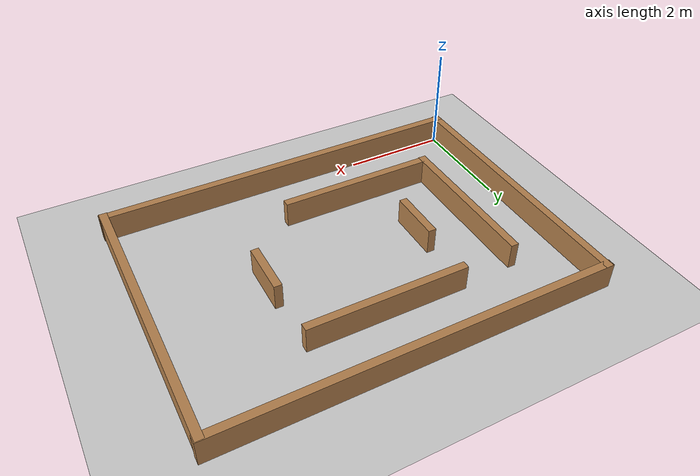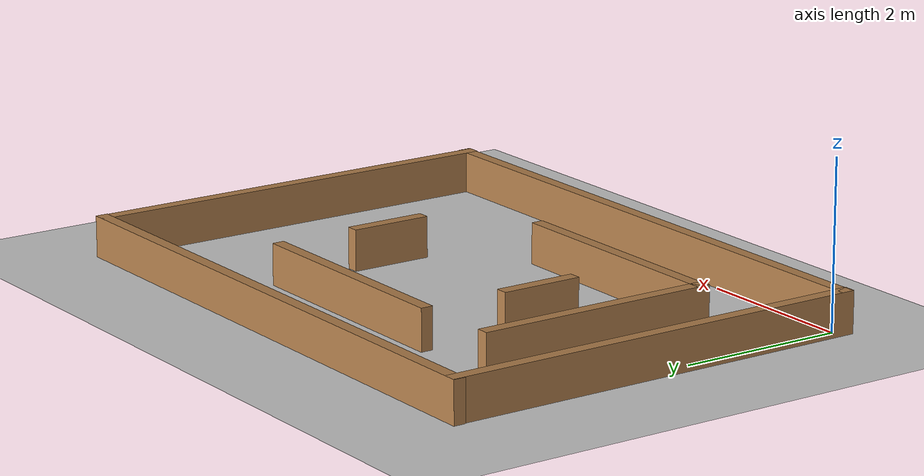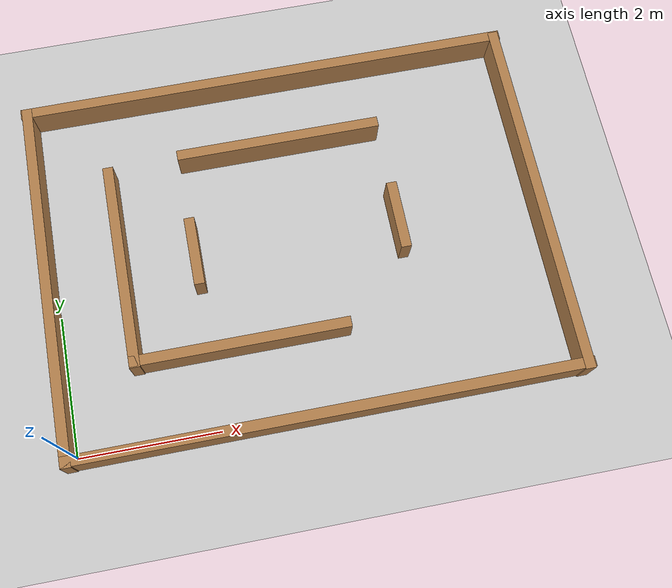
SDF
<sdf version="1.6">
 <world name="default">
  <light name="sun" type="directional">
   <pose>0 0 10 0 -0 0</pose>
   <diffuse>0.8 0.8 0.8 1</diffuse>
   <specular>0.2 0.2 0.2 1</specular>
   <attenuation>
    <range>1000</range>
    <constant>0.9</constant>
    <linear>0.01</linear>
    <quadratic>0.001</quadratic>
   </attenuation>
   <direction>-0.5 0.1 -0.9</direction>
  </light>
  <model name="ground_plane">
   <static>1</static>
   <link name="link">
    <collision name="collision">
     <geometry><plane><normal>0 0 1</normal><size>100 100</size></plane></geometry>
     <surface>
      <contact><collide_bitmask>65535</collide_bitmask></contact>
      <friction><ode><mu>100</mu><mu2>50</mu2></ode></friction>
     </surface>
    </collision>
    <visual name="visual">
     <cast_shadows>0</cast_shadows>
     <geometry><plane><normal>0 0 1</normal><size>100 100</size></plane></geometry>
     <material>
      <script><uri>file://media/materials/scripts/gazebo.material</uri><name>Gazebo/Grey</name></script>
     </material>
    </visual>
   </link>
  </model>
  <gravity>0 0 -9.8</gravity>
  <magnetic_field>6e-06 2.3e-05 -4.2e-05</magnetic_field>
  <atmosphere type="adiabatic"/>
  <physics name="default_physics" default="0" type="ode">
   <max_step_size>0.005</max_step_size>
   <real_time_factor>1</real_time_factor>
   <real_time_update_rate>4500</real_time_update_rate>
  </physics>
  <scene><ambient>0.4 0.4 0.4 1</ambient><background>0.7 0.7 0.7 1</background><shadows>1</shadows></scene>
  <audio><device>default</device></audio>
  <spherical_coordinates>
   <surface_model>EARTH_WGS84</surface_model>
   <latitude_deg>0</latitude_deg>
   <longitude_deg>0</longitude_deg>
   <elevation>0</elevation>
   <heading_deg>0</heading_deg>
  </spherical_coordinates>
  <model name="world3">
   <pose>3.49098 2.49495 0 0 -0 0</pose>
   <link name="Wall_0">
    <collision name="Wall_0_Collision">
     <geometry><box><size>5.32763 0.15 0.5</size></box></geometry>
     <pose>0 0 0.25 0 -0 0</pose>
    </collision>
    <visual name="Wall_0_Visual">
     <pose>0 0 0.25 0 -0 0</pose>
     <geometry><box><size>5.32763 0.15 0.5</size></box></geometry>
     <material>
      <script><uri>file://media/materials/scripts/gazebo.material</uri><name>Gazebo/Wood</name></script>
      <ambient>1 1 1 1</ambient>
     </material>
     <meta><layer>0</layer></meta>
    </visual>
    <pose>-3.57048 0.000862 0 0 -0 -1.5708</pose>
   </link>
   <link name="Wall_11">
    <collision name="Wall_11_Collision">
     <geometry><box><size>3.09258 0.15 0.5</size></box></geometry>
     <pose>0 0 0.25 0 -0 0</pose>
    </collision>
    <visual name="Wall_11_Visual">
     <pose>0 0 0.25 0 -0 0</pose>
     <geometry><box><size>3.09258 0.15 0.5</size></box></geometry>
     <material>
      <script><uri>file://media/materials/scripts/gazebo.material</uri><name>Gazebo/Wood</name></script>
      <ambient>1 1 1 1</ambient>
     </material>
     <meta><layer>0</layer></meta>
    </visual>
    <pose>-1.03078 -1.41516 0 0 -0 0</pose>
   </link>
   <link name="Wall_13">
    <collision name="Wall_13_Collision">
     <geometry><box><size>1 0.15 0.5</size></box></geometry>
     <pose>0 0 0.25 0 -0 0</pose>
    </collision>
    <visual name="Wall_13_Visual">
     <pose>0 0 0.25 0 -0 0</pose>
     <geometry><box><size>1 0.15 0.5</size></box></geometry>
     <material>
      <script><uri>file://media/materials/scripts/gazebo.material</uri><name>Gazebo/Wood</name></script>
      <ambient>1 1 1 1</ambient>
     </material>
     <meta><layer>0</layer></meta>
    </visual>
    <pose>-1.4573 0.004742 0 0 -0 -1.5708</pose>
   </link>
   <link name="Wall_15">
    <collision name="Wall_15_Collision">
     <geometry><box><size>3 0.15 0.5</size></box></geometry>
     <pose>0 0 0.25 0 -0 0</pose>
    </collision>
    <visual name="Wall_15_Visual">
     <pose>0 0 0.25 0 -0 0</pose>
     <geometry><box><size>3 0.15 0.5</size></box></geometry>
     <material>
      <script><uri>file://media/materials/scripts/gazebo.material</uri><name>Gazebo/Wood</name></script>
      <ambient>1 1 1 1</ambient>
     </material>
     <meta><layer>0</layer></meta>
    </visual>
    <pose>0.020604 1.50097 0 0 -0 0</pose>
   </link>
   <link name="Wall_17">
    <collision name="Wall_17_Collision">
     <geometry><box><size>1 0.15 0.5</size></box></geometry>
     <pose>0 0 0.25 0 -0 0</pose>
    </collision>
    <visual name="Wall_17_Visual">
     <pose>0 0 0.25 0 -0 0</pose>
     <geometry><box><size>1 0.15 0.5</size></box></geometry>
     <material>
      <script><uri>file://media/materials/scripts/gazebo.material</uri><name>Gazebo/Wood</name></script>
      <ambient>1 1 1 1</ambient>
     </material>
     <meta><layer>0</layer></meta>
    </visual>
    <pose>1.5051 0.004742 0 0 -0 -1.5708</pose>
   </link>
   <link name="Wall_3">
    <collision name="Wall_3_Collision">
     <geometry><box><size>7.30417 0.15 0.5</size></box></geometry>
     <pose>0 0 0.25 0 -0 0</pose>
    </collision>
    <visual name="Wall_3_Visual">
     <pose>0 0 0.25 0 -0 0</pose>
     <geometry><box><size>7.30417 0.15 0.5</size></box></geometry>
     <material>
      <script><uri>file://media/materials/scripts/gazebo.material</uri><name>Gazebo/Wood</name></script>
      <ambient>1 1 1 1</ambient>
     </material>
     <meta><layer>0</layer></meta>
    </visual>
    <pose>0.006613 -2.57645 0 0 -0 0</pose>
   </link>
   <link name="Wall_5">
    <collision name="Wall_5_Collision">
     <geometry><box><size>5.31613 0.15 0.5</size></box></geometry>
     <pose>0 0 0.25 0 -0 0</pose>
    </collision>
    <visual name="Wall_5_Visual">
     <pose>0 0 0.25 0 -0 0</pose>
     <geometry><box><size>5.31613 0.15 0.5</size></box></geometry>
     <material>
      <script><uri>file://media/materials/scripts/gazebo.material</uri><name>Gazebo/Wood</name></script>
      <ambient>1 1 1 1</ambient>
     </material>
     <meta><layer>0</layer></meta>
    </visual>
    <pose>3.57048 -0.006612 0 0 -0 1.5708</pose>
   </link>
   <link name="Wall_7">
    <collision name="Wall_7_Collision">
     <geometry><box><size>7.3174 0.15 0.5</size></box></geometry>
     <pose>0 0 0.25 0 -0 0</pose>
    </collision>
    <visual name="Wall_7_Visual">
     <pose>0 0 0.25 0 -0 0</pose>
     <geometry><box><size>7.3174 0.15 0.5</size></box></geometry>
     <material>
      <script><uri>file://media/materials/scripts/gazebo.material</uri><name>Gazebo/Wood</name></script>
      <ambient>1 1 1 1</ambient>
     </material>
     <meta><layer>0</layer></meta>
    </visual>
    <pose>0 2.58968 0 0 -0 0</pose>
   </link>
   <link name="Wall_9">
    <collision name="Wall_9_Collision">
     <geometry><box><size>3 0.15 0.5</size></box></geometry>
     <pose>0 0 0.25 0 -0 0</pose>
    </collision>
    <visual name="Wall_9_Visual">
     <pose>0 0 0.25 0 -0 0</pose>
     <geometry><box><size>3 0.15 0.5</size></box></geometry>
     <material>
      <script><uri>file://media/materials/scripts/gazebo.material</uri><name>Gazebo/Wood</name></script>
      <ambient>1 1 1 1</ambient>
     </material>
     <meta><layer>0</layer></meta>
    </visual>
    <pose>-2.50207 -0.003383 0 0 -0 -1.5708</pose>
   </link>
   <static>1</static>
  </model>
 </world>
</sdf>
